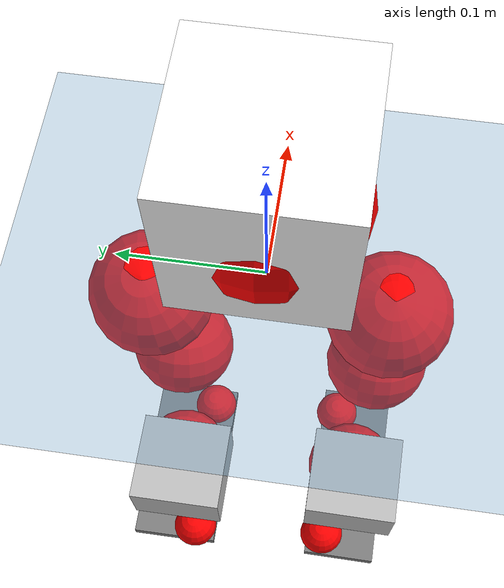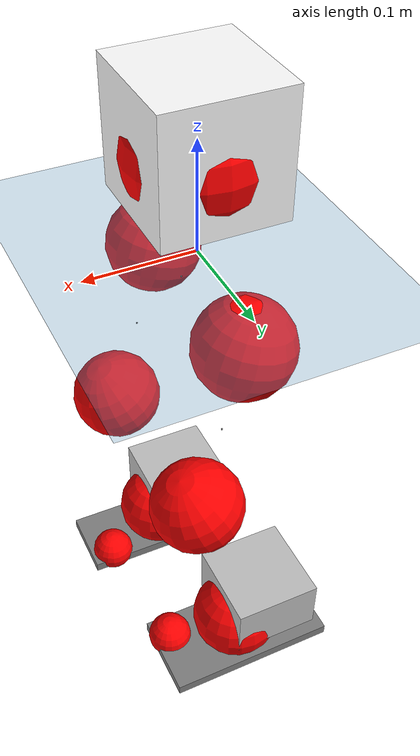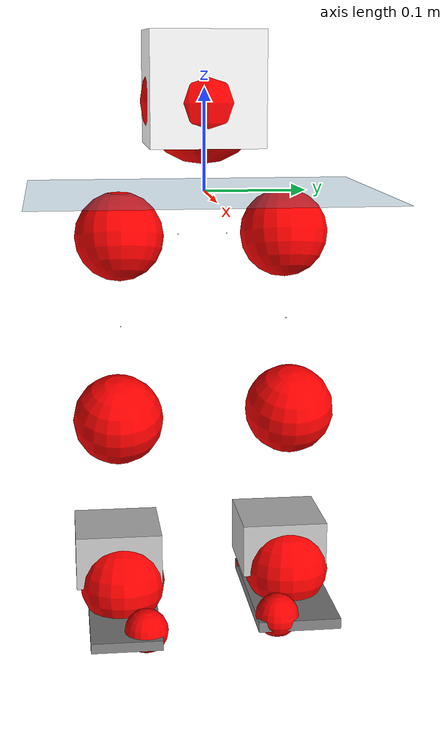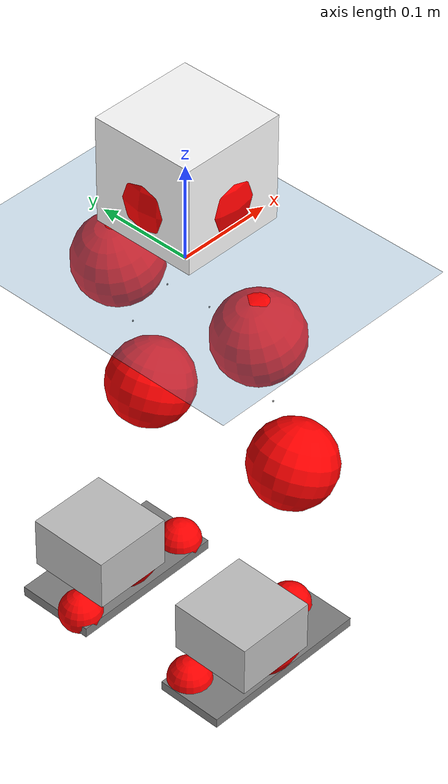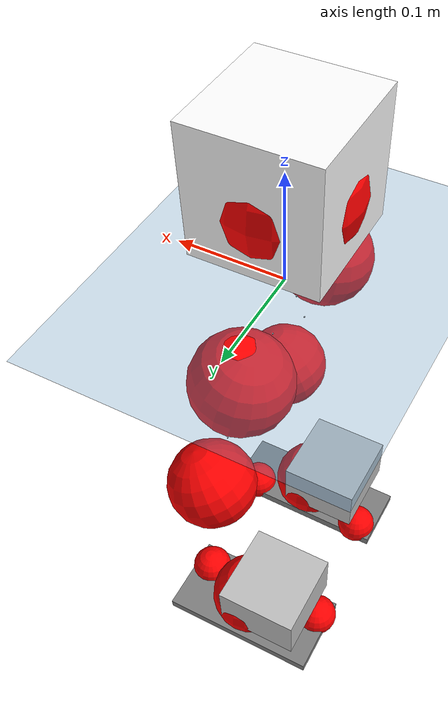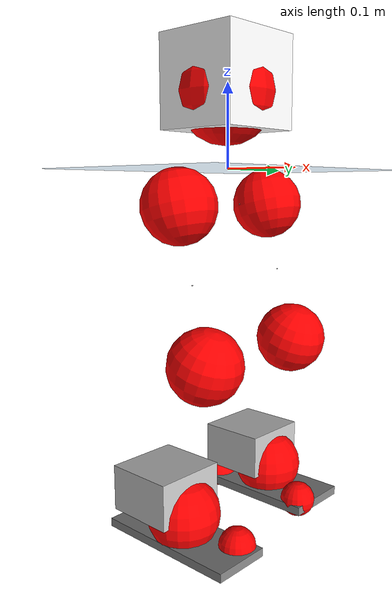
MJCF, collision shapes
<mujoco model="pi_12dof_release_v1">
  <compiler angle="radian" assetdir="assets" balanceinertia="true" inertiafromgeom="false"/>

  <option timestep="0.005" density="1.2" viscosity="2e-05"/>

  <size nkey="1"/>

  <visual>
    <quality shadowsize="8192"/>
    <map shadowclip="0.5"/>
  </visual>

  <default>
    <default class="/">
      <joint armature="0.01" damping="0.01" frictionloss="0.01"/>
      <geom contype="0" conaffinity="0" group="1" solref="-1000 -80"/>
      <site size="0.01 0.005 0.005" group="5"/>
      <general forcelimited="true" biastype="affine" gainprm="20" biasprm="0 -20 -0.5"/>
      <default class="foot">
        <geom size="0.0845 0.036 0.005" type="box" condim="6" group="4" priority="1" friction="0.9 0.2 0.2" solimp="0.015 1 0.005"/>
      </default>
      <default class="reward_collision_sphere">
        <geom group="5" rgba="1 0 0 1"/>
      </default>
    </default>
  </default>

  <asset>
    <texture type="skybox" colorspace="auto" name="//unnamed_texture_0" builtin="gradient" rgb1="0.95 0.95 0.95" rgb2="0.95 0.95 0.95" width="100" height="600"/>
    <texture type="2d" colorspace="auto" name="texplane" builtin="checker" rgb1="0.345 0.575 0.748" rgb2="0.345 0.575 0.748" markrgb="1 1 1" width="512" height="512"/>
    <material name="MatPlane" class="/" texture="texplane" texuniform="true" texrepeat="2 2" specular="0.9"/>
    <mesh name="baselink_1" class="/" file="baselink_1.STL"/>
    <mesh name="r_hip_pitch_link" class="/" file="r_hip_pitch_link.STL"/>
    <mesh name="r_hip_roll_link" class="/" file="r_hip_roll_link.STL"/>
    <mesh name="r_thigh_link" class="/" file="r_thigh_link.STL"/>
    <mesh name="r_calf_link" class="/" file="r_calf_link.STL"/>
    <mesh name="r_ankle_pitch_link" class="/" file="r_ankle_pitch_link.STL"/>
    <mesh name="r_ankle_roll_link" class="/" file="r_ankle_roll_link.STL"/>
    <mesh name="l_hip_pitch_link" class="/" file="l_hip_pitch_link.STL"/>
    <mesh name="l_hip_roll_link" class="/" file="l_hip_roll_link.STL"/>
    <mesh name="l_thigh_link" class="/" file="l_thigh_link.STL"/>
    <mesh name="l_calf_link" class="/" file="l_calf_link.STL"/>
    <mesh name="l_ankle_pitch_link" class="/" file="l_ankle_pitch_link.STL"/>
    <mesh name="l_ankle_roll_link" class="/" file="l_ankle_roll_link.STL"/>
  </asset>

  <worldbody>
    <geom name="floor" class="/" size="100 100 0.125" type="plane" group="0" material="MatPlane"/>
    <light name="toplight_shadow" class="/" pos="0 0 5" dir="0.0990148 0.0990148 -0.990148" type="directional" ambient="0.04 0.04 0.04" diffuse="0.55 0.55 0.55" specular="0.12 0.12 0.12"/>
    <light name="toplight_fill" class="/" pos="0 0 5" dir="0.0990148 0.0990148 -0.990148" type="directional" castshadow="false" ambient="0.04 0.04 0.04" diffuse="0.3 0.3 0.3" specular="0.08 0.08 0.08"/>
    <body name="trunk" pos="-0.000477884 -0.00211387 -0.000828619" quat="1 -2.66564e-05 -7.15445e-08 -5.30977e-07">
      <inertial pos="0.00454558 -0.00187253 0.0504254" quat="0.694148 0.012601 0.0107515 0.719641" mass="2.82344" diaginertia="0.0101123 0.00976528 0.0128651"/>
      <joint name="//unnamed_joint_0" type="free"/>
      <geom name="//unnamed_geom_1" class="/" type="mesh" density="0" rgba="1 1 1 1" mesh="baselink_1"/>
      <geom name="//unnamed_geom_2" class="/" size="0.0547998 0.0547998 0.0547998" pos="0 0 0.100303" type="box" rgba="1 1 1 1"/>
      <geom name="//unnamed_geom_3" class="reward_collision_sphere" size="0.0602797" pos="0 0 0.087765"/>
      <site name="imu" class="/" pos="0.0112575 0.0140283 -0.0106054" size="0.01096"/>
      <camera name="track" class="/" pos="0 -2.0422 0" quat="0.707107 0.707107 0 0" mode="trackcom"/>
      <camera name="ego_camera" class="/" pos="0.0759825 0 0.225681" quat="-0.5 -0.5 0.5 0.5"/>
      <body name="r_hip_pitch_link" pos="0.0030567 -0.0240696 -0.0409787" quat="0.992253 -3.01845e-05 -0.124229 -0.000819772">
        <inertial pos="0.00150921 -0.0575508 0.00287181" quat="-0.0211126 0.705681 -0.0258443 0.707743" mass="0.47786" diaginertia="0.00011585 0.000106424 0.000255141"/>
        <joint name="r_hip_pitch_joint" class="/" pos="0 0 0" axis="0.00720708 -0.999968 -0.00359122" range="-1.73823 1.19273" armature="0.0106661" damping="0.0187796" frictionloss="0.0102488"/>
        <geom name="//unnamed_geom_4" class="/" type="mesh" density="0" rgba="0.75294 0.75294 0.75294 1" mesh="r_hip_pitch_link"/>
        <geom name="//unnamed_geom_5" class="/" size="0.000547998 0.000547998 0.000547998" type="box" rgba="0.75294 0.75294 0.75294 1"/>
        <body name="r_hip_roll_link" pos="0.000506721 -0.0582663 -0.00127657" quat="0.999999 0.000116779 -0.00108982 -0.000549442">
          <inertial pos="0.000912488 0.00295729 -0.0757257" quat="0.708813 -0.0809097 -0.0875363 0.695252" mass="0.511198" diaginertia="0.000348965 0.000304744 0.000383783"/>
          <joint name="r_hip_roll_joint" class="/" pos="0 0 0" axis="-0.999908 -0.00697397 0.0116149" range="-0.112738 0.532963" armature="0.00942948" damping="0.0279349" frictionloss="0.0115069"/>
          <geom name="//unnamed_geom_6" class="/" type="mesh" density="0" rgba="0.75294 0.75294 0.75294 1" mesh="r_hip_roll_link"/>
          <geom name="//unnamed_geom_7" class="/" size="0.000547998 0.000547998 0.000547998" type="box" rgba="0.75294 0.75294 0.75294 1"/>
          <geom name="//unnamed_geom_8" class="reward_collision_sphere" size="0.0438398"/>
          <body name="r_thigh_link" pos="-0.00195317 -0.000625038 -0.0883681" quat="0.999999 0.000276802 0.00133324 -0.000359237">
            <inertial pos="0.00290673 0.000849164 -0.0594567" quat="0.738875 0.673842 -0.000284109 -0.000650716" mass="0.14994" diaginertia="0.000130393 0.000106234 0.000179903"/>
            <joint name="r_thigh_joint" class="/" pos="0 0 0" axis="-0.00478836 -0.00190588 -0.999987" range="-0.351411 0.597483" armature="0.00947746" damping="0.00159875" frictionloss="0.0109645"/>
            <geom name="//unnamed_geom_9" class="/" type="mesh" density="0" rgba="0.75294 0.75294 0.75294 1" mesh="r_thigh_link"/>
            <geom name="//unnamed_geom_10" class="/" size="0.000547998 0.000547998 0.000547998" type="box" rgba="0.75294 0.75294 0.75294 1"/>
            <body name="r_calf_link" pos="0.001554 -0.00474986 -0.090208" quat="0.947741 4.66811e-05 0.319041 -6.4728e-05">
              <inertial pos="-0.00302761 0.000219734 -0.0864128" quat="0.999985 -0.00550261 -0.000517336 0.000320896" mass="1.04163" diaginertia="0.00362808 0.0038747 0.000547921"/>
              <joint name="r_calf_joint" class="/" pos="0 0 0" axis="0.0112923 -0.999918 0.00604337" range="-1.66302 0.704114" armature="0.01024" damping="0.0127968" frictionloss="0.0124886"/>
              <geom name="//unnamed_geom_11" class="/" type="mesh" density="0" rgba="0.75294 0.75294 0.75294 1" mesh="r_calf_link"/>
              <geom name="//unnamed_geom_12" class="/" size="0.000547998 0.000547998 0.000547998" type="box" rgba="0.75294 0.75294 0.75294 1"/>
              <geom name="//unnamed_geom_13" class="reward_collision_sphere" size="0.0438398"/>
              <body name="r_ankle_pitch_link" pos="0.00115726 -0.000262825 -0.172318" quat="0.979815 0.000118088 -0.199905 -0.000317043">
                <inertial pos="0.00205563 0.00391792 0.000756779" quat="-0.00896295 0.704621 -0.00961745 0.709462" mass="0.243881" diaginertia="0.000331613 0.00025106 0.000367646"/>
                <joint name="r_ankle_pitch_joint" class="/" pos="0 0 0" axis="-0.000391937 -0.999996 0.00262158" range="-1.24103 0.513724" armature="0.0104612" damping="0.0216142" frictionloss="0.00967369"/>
                <geom name="//unnamed_geom_14" class="/" type="mesh" density="0" rgba="0.75294 0.75294 0.75294 1" mesh="r_ankle_pitch_link"/>
                <geom name="//unnamed_geom_15" class="/" size="0.0427438 0.0438398 0.0273999" type="box" rgba="0.75294 0.75294 0.75294 1"/>
                <body name="r_ankle_roll_link" pos="0.0771668 0.00337821 -0.00226363" quat="1 -0.000418504 -0.000554419 -0.000113833">
                  <inertial pos="-0.021383 0.000351827 -0.0156732" quat="0.553074 0.433602 0.427606 0.568552" mass="0.67693" diaginertia="0.00122547 0.00115322 0.000901339"/>
                  <joint name="r_ankle_roll_joint" class="/" pos="0 0 0" axis="-0.999999 -0.000860433 0.000698799" stiffness="0.00828688" range="-0.151502 0.1511" armature="0.010803" damping="0" frictionloss="0.00942231"/>
                  <geom name="//unnamed_geom_16" class="/" type="mesh" density="0" rgba="0.75294 0.75294 0.75294 1" mesh="r_ankle_roll_link"/>
                  <geom name="//unnamed_geom_17" class="/" type="mesh" rgba="0.75294 0.75294 0.75294 1" mesh="r_ankle_roll_link"/>
                  <geom name="right_foot" class="foot" size="0.0921054 0.0354533 0.00507469" pos="-0.0516681 0 -0.0551666"/>
                  <geom name="//unnamed_geom_19" class="reward_collision_sphere" size="0.0438398" pos="-0.050655 0 -0.0250757"/>
                  <geom name="//unnamed_geom_20" class="reward_collision_sphere" size="0.0219199" pos="0.0151965 0.020422 -0.0501514"/>
                  <geom name="//unnamed_geom_21" class="reward_collision_sphere" size="0.0219199" pos="-0.121572 0.020422 -0.0501514"/>
                  <site name="right_foot" class="foot" pos="-0.0516681 0 -0.0551666" size="0.01096"/>
                </body>
              </body>
            </body>
          </body>
        </body>
      </body>
      <body name="l_hip_pitch_link" pos="0.000244566 0.0242651 -0.040957" quat="0.992175 0.000283503 -0.124853 0.00104688">
        <inertial pos="0.000945175 0.0536816 0.00263233" quat="-0.0360803 0.711524 0.0279335 0.701179" mass="0.541455" diaginertia="0.000142201 0.000120688 0.000320747"/>
        <joint name="l_hip_pitch_joint" class="/" pos="0 0 0" axis="0.00159142 0.999999 -0.000237116" stiffness="0.00336497" range="-1.23757 1.75264" armature="0.0113905" damping="0.00322634" frictionloss="0.0123859"/>
        <geom name="//unnamed_geom_22" class="/" type="mesh" density="0" rgba="0.75294 0.75294 0.75294 1" mesh="l_hip_pitch_link"/>
        <geom name="//unnamed_geom_23" class="/" size="0.000547998 0.000547998 0.000547998" type="box" rgba="0.75294 0.75294 0.75294 1"/>
        <body name="l_hip_roll_link" pos="-0.00320051 0.057739 0.000361425" quat="1 -0.000257537 -0.000159286 6.79334e-05">
          <inertial pos="-0.00270491 0.000750455 -0.0766938" quat="0.699724 -0.087569 -0.0840452 0.704027" mass="0.5232" diaginertia="0.000359413 0.000327564 0.000414169"/>
          <joint name="l_hip_roll_joint" class="/" pos="0 0 0" axis="-0.999955 0.00256254 -0.00912404" range="-0.512139 0.104612" armature="0.0119539" damping="0.00522097" frictionloss="0.0122627"/>
          <geom name="//unnamed_geom_24" class="/" type="mesh" density="0" rgba="0.75294 0.75294 0.75294 1" mesh="l_hip_roll_link"/>
          <geom name="//unnamed_geom_25" class="/" size="0.000547998 0.000547998 0.000547998" type="box" rgba="0.75294 0.75294 0.75294 1"/>
          <geom name="//unnamed_geom_26" class="reward_collision_sphere" size="0.0438398"/>
          <body name="l_thigh_link" pos="-0.00334622 0.000265854 -0.0853115" quat="1 -0.000236598 0.000294169 0.000296041">
            <inertial pos="0.000903864 -0.00188424 -0.0606566" quat="0.675249 0.737573 -0.00218239 0.00452651" mass="0.158792" diaginertia="0.000140362 0.000110084 0.000185695"/>
            <joint name="l_thigh_joint" class="/" pos="0 0 0" axis="0.00168752 -0.000414208 -0.999998" range="-0.604784 0.302081" armature="0.00945902" damping="0.0108425" frictionloss="0.0108513"/>
            <geom name="//unnamed_geom_27" class="/" type="mesh" density="0" rgba="0.75294 0.75294 0.75294 1" mesh="l_thigh_link"/>
            <geom name="//unnamed_geom_28" class="/" size="0.000547998 0.000547998 0.000547998" type="box" rgba="0.75294 0.75294 0.75294 1"/>
            <body name="l_calf_link" pos="0.00043235 0.000299306 -0.0902266" quat="0.947479 8.65259e-05 0.319817 -0.000499371">
              <inertial pos="0.00213663 0.00521246 -0.0902136" quat="0.999971 0.00755663 0.0012162 0.000325185" mass="1.09533" diaginertia="0.00399807 0.00414015 0.000565166"/>
              <joint name="l_calf_joint" class="/" pos="0 0 0" axis="0.00742358 0.999873 0.0140771" range="-0.628749 1.6035" armature="0.0119345" damping="0.0153699" frictionloss="0.0121833"/>
              <geom name="//unnamed_geom_29" class="/" type="mesh" density="0" rgba="0.75294 0.75294 0.75294 1" mesh="l_calf_link"/>
              <geom name="//unnamed_geom_30" class="/" size="0.000547998 0.000547998 0.000547998" type="box" rgba="0.75294 0.75294 0.75294 1"/>
              <geom name="//unnamed_geom_31" class="reward_collision_sphere" size="0.0438398"/>
              <body name="l_ankle_pitch_link" pos="0.000479699 0.00318633 -0.174189" quat="0.980146 -1.36637e-05 -0.198277 0.000315649">
                <inertial pos="0.00505601 -0.00208898 0.00283542" quat="-0.00301451 0.703968 0.00106447 0.710224" mass="0.220827" diaginertia="0.000313498 0.00023526 0.000357684"/>
                <joint name="l_ankle_pitch_joint" class="/" pos="0 0 0" axis="0.00313036 0.999995 -8.18074e-05" range="-0.544856 1.35793" armature="0.0106096" damping="0.0141396" frictionloss="0.0108806"/>
                <geom name="//unnamed_geom_32" class="/" type="mesh" density="0" rgba="0.75294 0.75294 0.75294 1" mesh="l_ankle_pitch_link"/>
                <geom name="//unnamed_geom_33" class="/" size="0.0427438 0.0438398 0.0273999" type="box" rgba="0.75294 0.75294 0.75294 1"/>
                <body name="l_ankle_roll_link" pos="0.0771978 0.00398177 0.00122627" quat="0.999999 5.3066e-05 0.000339083 0.00133294">
                  <inertial pos="-0.0247061 -0.000283991 -0.0201912" quat="0.558344 0.431705 0.443931 0.552094" mass="0.690433" diaginertia="0.0012197 0.00111763 0.000884552"/>
                  <joint name="l_ankle_roll_joint" class="/" pos="0 0 0" axis="-0.999999 0.000848559 0.000695097" range="-0.153486 0.107858" armature="0.0112936" damping="0.0128742" frictionloss="0.0101208"/>
                  <geom name="//unnamed_geom_34" class="/" type="mesh" density="0" rgba="0.75294 0.75294 0.75294 1" mesh="l_ankle_roll_link"/>
                  <geom name="//unnamed_geom_35" class="/" type="mesh" rgba="0.75294 0.75294 0.75294 1" mesh="l_ankle_roll_link"/>
                  <geom name="left_foot" class="foot" size="0.0842559 0.0415965 0.00536062" pos="-0.0516681 0 -0.0551666"/>
                  <geom name="//unnamed_geom_37" class="reward_collision_sphere" size="0.0438398" pos="-0.050655 0 -0.0250757"/>
                  <geom name="//unnamed_geom_38" class="reward_collision_sphere" size="0.0219199" pos="0.0151965 -0.020422 -0.0501514"/>
                  <geom name="//unnamed_geom_39" class="reward_collision_sphere" size="0.0219199" pos="-0.121572 -0.020422 -0.0501514"/>
                  <site name="left_foot" class="foot" pos="-0.0516681 0 -0.0551666" size="0.01096"/>
                </body>
              </body>
            </body>
          </body>
        </body>
      </body>
    </body>
  </worldbody>

  <contact>
    <pair class="/" geom1="floor" geom2="right_foot" name="//unnamed_contact_1"/>
    <pair class="/" geom1="floor" geom2="left_foot" name="//unnamed_contact_0"/>
  </contact>

  <actuator>
    <general name="r_hip_pitch_joint" class="/" joint="r_hip_pitch_joint" forcerange="-21.7877 21.7877" gainprm="20.4369" biasprm="0 -20.4369 -0.533072"/>
    <general name="r_hip_roll_joint" class="/" joint="r_hip_roll_joint" forcerange="-23.1817 23.1817" gainprm="20.4369" biasprm="0 -20.4369 -0.533072"/>
    <general name="r_thigh_joint" class="/" joint="r_thigh_joint" forcerange="-25.2909 25.2909" gainprm="20.4369" biasprm="0 -20.4369 -0.533072"/>
    <general name="r_calf_joint" class="/" joint="r_calf_joint" forcerange="-21.9104 21.9104" gainprm="20.4369" biasprm="0 -20.4369 -0.533072"/>
    <general name="r_ankle_pitch_joint" class="/" joint="r_ankle_pitch_joint" forcerange="-23.578 23.578" gainprm="20.4369" biasprm="0 -20.4369 -0.533072"/>
    <general name="r_ankle_roll_joint" class="/" joint="r_ankle_roll_joint" forcerange="-23.5463 23.5463" gainprm="20.4369" biasprm="0 -20.4369 -0.533072"/>
    <general name="l_hip_pitch_joint" class="/" joint="l_hip_pitch_joint" forcerange="-22.5409 22.5409" gainprm="20.4369" biasprm="0 -20.4369 -0.533072"/>
    <general name="l_hip_roll_joint" class="/" joint="l_hip_roll_joint" forcerange="-20.8113 20.8113" gainprm="20.4369" biasprm="0 -20.4369 -0.533072"/>
    <general name="l_thigh_joint" class="/" joint="l_thigh_joint" forcerange="-21.3343 21.3343" gainprm="20.4369" biasprm="0 -20.4369 -0.533072"/>
    <general name="l_calf_joint" class="/" joint="l_calf_joint" forcerange="-23.5344 23.5344" gainprm="20.4369" biasprm="0 -20.4369 -0.533072"/>
    <general name="l_ankle_pitch_joint" class="/" joint="l_ankle_pitch_joint" forcerange="-23.5295 23.5295" gainprm="20.4369" biasprm="0 -20.4369 -0.533072"/>
    <general name="l_ankle_roll_joint" class="/" joint="l_ankle_roll_joint" forcerange="-25.283 25.283" gainprm="20.4369" biasprm="0 -20.4369 -0.533072"/>
  </actuator>

  <sensor>
    <gyro site="imu" name="imu_angular_velocity"/>
    <velocimeter site="imu" name="imu_linear_velocity"/>
    <framelinvel objtype="site" objname="left_foot" name="left_foot_global_linear_velocity"/>
    <framelinvel objtype="site" objname="right_foot" name="right_foot_global_linear_velocity"/>
  </sensor>

  <keyframe>
    <key name="home" qpos="0 0 0.291 1 0 0 0 0.4 0 0 -0.8 0.4 0 -0.4 0 0 0.8 -0.4 0"/>
  </keyframe>
</mujoco>
